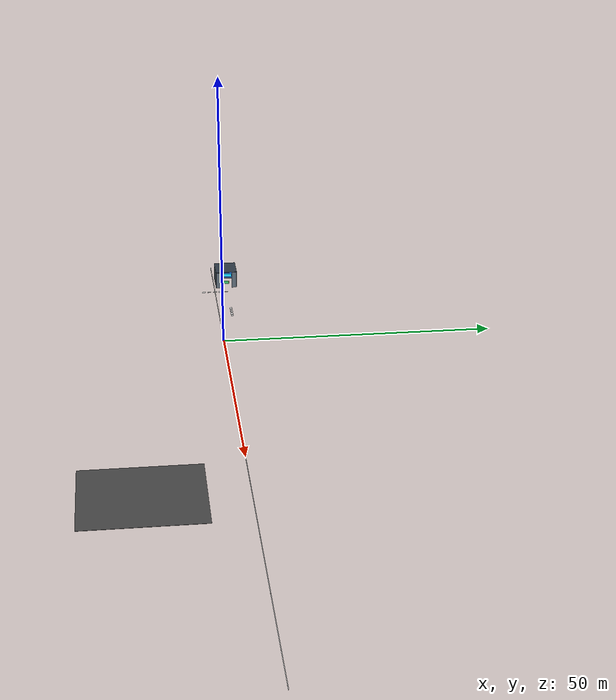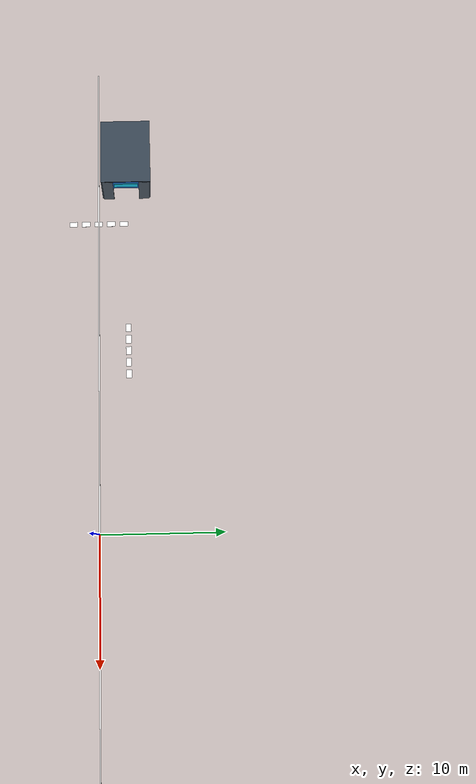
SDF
<sdf version="1.6">
 <world name="default">
  <plugin name="gazebo_ros_state" filename="libgazebo_ros_state.so">
   <ros><namespace>/gazebo</namespace></ros>
   <update_rate>1.0</update_rate>
  </plugin>
  <scene>
   <shadows>false</shadows>
   <grid>false</grid>
   <origin_visual>false</origin_visual>
   <ambient>0.85 0.85 0.85 1</ambient>
   <sky><clouds><speed>12</speed></clouds></sky>
   <background>0.35 0.35 0.35 1.0</background>
  </scene>
  <physics name="default_physics" default="0" type="ode">
   <max_step_size>0.005</max_step_size>
   <real_time_factor>1.0</real_time_factor>
   <real_time_update_rate>0</real_time_update_rate>
   <model_plugin_loading_timeout>120.0</model_plugin_loading_timeout>
   <ode>
    <solver><type>quick</type><iters>20</iters><sor>1.3</sor></solver>
    <constraints>
     <cfm>0.00001</cfm>
     <erp>0.2</erp>
     <contact_max_correcting_vel>100.0</contact_max_correcting_vel>
     <contact_surface_layer>0.001</contact_surface_layer>
    </constraints>
   </ode>
  </physics>
  <spherical_coordinates>
   <surface_model>EARTH_WGS84</surface_model>
   <latitude_deg>38.161479</latitude_deg>
   <longitude_deg>-122.454630</longitude_deg>
   <elevation>488.0</elevation>
   <heading_deg>180</heading_deg>
  </spherical_coordinates>
  <light type="directional" name="sun">
   <pose>0 0 1000 0 0 0</pose>
   <cast_shadows>false</cast_shadows>
   <diffuse>0.8 0.8 0.8 1</diffuse>
   <specular>0.5 0.5 0.5 1</specular>
   <attenuation>
    <range>1000</range>
    <constant>0.9</constant>
    <linear>0.01</linear>
    <quadratic>0.001</quadratic>
   </attenuation>
   <direction>-0.5 0.1 -0.4</direction>
  </light>
  <model name="ground_plane">
   <static>true</static>
   <link name="link">
    <collision name="collision">
     <geometry><plane><normal>0 0 1</normal><size>100 100</size></plane></geometry>
     <surface><friction><ode><mu>100</mu><mu2>50</mu2></ode></friction></surface>
    </collision>
   </link>
  </model>
  <model name="asphalt_plane_74">
   <static>true</static>
   <pose>61.581
    -16.664
    0
    0
    0
    0</pose>
   <link name="link">
    <visual name="visual">
     <geometry><box><size>20
            20
            0.05</size></box></geometry>
     <material>
      <script>
       <uri>model://asphalt_plane/materials/scripts</uri>
       <uri>model://asphalt_plane/materials/textures</uri>
       <name>vrc/asphalt</name>
      </script>
     </material>
    </visual>
   </link>
  </model>
  <model name="camera_delivery_lane_marking">
   <static>true</static>
   <link name="marking">
    <visual name="white_center_line">
     <pose>37.5 0 0.024 0 0 0</pose>
     <geometry><box><size>157.6 0.10 0.006</size></box></geometry>
     <material><ambient>0.95 0.95 0.95 1</ambient><diffuse>0.95 0.95 0.95 1</diffuse></material>
    </visual>
   </link>
  </model>
  <model name="depot_pedestrian_crosswalk">
   <static>true</static>
   <link name="stripes">
    <visual name="stripe_1">
     <pose>-26.5 -2.2 0.024 0 0 0</pose>
     <geometry><box><size>0.45 0.70 0.005</size></box></geometry>
     <material><ambient>0.95 0.95 0.95 1</ambient><diffuse>0.95 0.95 0.95 1</diffuse></material>
    </visual>
    <visual name="stripe_2">
     <pose>-26.5 -1.1 0.024 0 0 0</pose>
     <geometry><box><size>0.45 0.70 0.005</size></box></geometry>
     <material><ambient>0.95 0.95 0.95 1</ambient><diffuse>0.95 0.95 0.95 1</diffuse></material>
    </visual>
    <visual name="stripe_3">
     <pose>-26.5  0.0 0.024 0 0 0</pose>
     <geometry><box><size>0.45 0.70 0.005</size></box></geometry>
     <material><ambient>0.95 0.95 0.95 1</ambient><diffuse>0.95 0.95 0.95 1</diffuse></material>
    </visual>
    <visual name="stripe_4">
     <pose>-26.5  1.1 0.024 0 0 0</pose>
     <geometry><box><size>0.45 0.70 0.005</size></box></geometry>
     <material><ambient>0.95 0.95 0.95 1</ambient><diffuse>0.95 0.95 0.95 1</diffuse></material>
    </visual>
    <visual name="stripe_5">
     <pose>-26.5  2.2 0.024 0 0 0</pose>
     <geometry><box><size>0.45 0.70 0.005</size></box></geometry>
     <material><ambient>0.95 0.95 0.95 1</ambient><diffuse>0.95 0.95 0.95 1</diffuse></material>
    </visual>
   </link>
  </model>
  <model name="intersection_pedestrian_crosswalk">
   <static>true</static>
   <link name="stripes">
    <visual name="stripe_n1">
     <pose>-17.0 2.5 0.024 0 0 1.5708</pose>
     <geometry><box><size>0.45 0.70 0.005</size></box></geometry>
     <material><ambient>0.95 0.95 0.95 1</ambient><diffuse>0.95 0.95 0.95 1</diffuse></material>
    </visual>
    <visual name="stripe_n2">
     <pose>-16.0 2.5 0.024 0 0 1.5708</pose>
     <geometry><box><size>0.45 0.70 0.005</size></box></geometry>
     <material><ambient>0.95 0.95 0.95 1</ambient><diffuse>0.95 0.95 0.95 1</diffuse></material>
    </visual>
    <visual name="stripe_n3">
     <pose>-15.0 2.5 0.024 0 0 1.5708</pose>
     <geometry><box><size>0.45 0.70 0.005</size></box></geometry>
     <material><ambient>0.95 0.95 0.95 1</ambient><diffuse>0.95 0.95 0.95 1</diffuse></material>
    </visual>
    <visual name="stripe_n4">
     <pose>-14.0 2.5 0.024 0 0 1.5708</pose>
     <geometry><box><size>0.45 0.70 0.005</size></box></geometry>
     <material><ambient>0.95 0.95 0.95 1</ambient><diffuse>0.95 0.95 0.95 1</diffuse></material>
    </visual>
    <visual name="stripe_n5">
     <pose>-13.0 2.5 0.024 0 0 1.5708</pose>
     <geometry><box><size>0.45 0.70 0.005</size></box></geometry>
     <material><ambient>0.95 0.95 0.95 1</ambient><diffuse>0.95 0.95 0.95 1</diffuse></material>
    </visual>
   </link>
  </model>
  <model name="central_logistics_depot_building">
   <static>true</static>
   <pose>-31.75 2.50 0 0 0 0</pose>
   <link name="back_wall">
    <pose>-2.75 0 1.6 0 0 0</pose>
    <collision name="col"><geometry><box><size>0.20 4.0 3.2</size></box></geometry></collision>
    <visual name="vis">
     <geometry><box><size>0.20 4.0 3.2</size></box></geometry>
     <material><ambient>0.25 0.28 0.32 1</ambient><diffuse>0.35 0.40 0.45 1</diffuse></material>
    </visual>
   </link>
   <link name="north_wall">
    <pose>0 2.0 1.6 0 0 0</pose>
    <collision name="col"><geometry><box><size>5.5 0.20 3.2</size></box></geometry></collision>
    <visual name="vis">
     <geometry><box><size>5.5 0.20 3.2</size></box></geometry>
     <material><ambient>0.25 0.28 0.32 1</ambient><diffuse>0.35 0.40 0.45 1</diffuse></material>
    </visual>
   </link>
   <link name="south_wall">
    <pose>0 -2.0 1.6 0 0 0</pose>
    <collision name="col"><geometry><box><size>5.5 0.20 3.2</size></box></geometry></collision>
    <visual name="vis">
     <geometry><box><size>5.5 0.20 3.2</size></box></geometry>
     <material><ambient>0.25 0.28 0.32 1</ambient><diffuse>0.35 0.40 0.45 1</diffuse></material>
    </visual>
   </link>
   <link name="roof">
    <pose>0 0 3.2 0 0 0</pose>
    <collision name="col"><geometry><box><size>5.7 4.2 0.15</size></box></geometry></collision>
    <visual name="vis">
     <geometry><box><size>5.7 4.2 0.15</size></box></geometry>
     <material><ambient>0.15 0.18 0.22 1</ambient><diffuse>0.20 0.25 0.30 1</diffuse></material>
    </visual>
   </link>
   <link name="front_wall_left">
    <pose>2.75 1.55 1.6 0 0 0</pose>
    <collision name="col"><geometry><box><size>0.20 0.90 3.2</size></box></geometry></collision>
    <visual name="vis">
     <geometry><box><size>0.20 0.90 3.2</size></box></geometry>
     <material><ambient>0.25 0.28 0.32 1</ambient><diffuse>0.35 0.40 0.45 1</diffuse></material>
    </visual>
   </link>
   <link name="front_wall_right">
    <pose>2.75 -1.55 1.6 0 0 0</pose>
    <collision name="col"><geometry><box><size>0.20 0.90 3.2</size></box></geometry></collision>
    <visual name="vis">
     <geometry><box><size>0.20 0.90 3.2</size></box></geometry>
     <material><ambient>0.25 0.28 0.32 1</ambient><diffuse>0.35 0.40 0.45 1</diffuse></material>
    </visual>
   </link>
   <link name="front_door_transom">
    <pose>2.75 0 2.65 0 0 0</pose>
    <collision name="col"><geometry><box><size>0.20 2.20 1.10</size></box></geometry></collision>
    <visual name="vis">
     <geometry><box><size>0.20 2.20 1.10</size></box></geometry>
     <material><ambient>0.1 0.3 0.6 1</ambient><diffuse>0.15 0.45 0.85 1</diffuse></material>
    </visual>
    <visual name="depot_sign">
     <pose>0.12 0 0 0 0 1.5708</pose>
     <geometry><box><size>2.0 0.05 0.55</size></box></geometry>
     <material>
      <ambient>0.05 0.7 0.9 1</ambient>
      <diffuse>0.1 0.85 1.0 1</diffuse>
      <emissive>0.05 0.3 0.5 1</emissive>
     </material>
    </visual>
   </link>
   <link name="docking_pad">
    <pose>-0.25 0.05 0.015 0 0 0</pose>
    <collision name="col"><geometry><box><size>1.6 1.2 0.02</size></box></geometry></collision>
    <visual name="dock_surface">
     <geometry><box><size>1.6 1.2 0.02</size></box></geometry>
     <material>
      <ambient>0.15 0.55 0.35 1</ambient>
      <diffuse>0.2 0.7 0.4 1</diffuse>
      <emissive>0.05 0.2 0.1 1</emissive>
     </material>
    </visual>
    <visual name="dock_border_l">
     <pose>0 0.62 0.03 0 0 0</pose>
     <geometry><box><size>1.6 0.06 0.04</size></box></geometry>
     <material><ambient>0.9 0.8 0.1 1</ambient><diffuse>1.0 0.9 0.1 1</diffuse></material>
    </visual>
    <visual name="dock_border_r">
     <pose>0 -0.62 0.03 0 0 0</pose>
     <geometry><box><size>1.6 0.06 0.04</size></box></geometry>
     <material><ambient>0.9 0.8 0.1 1</ambient><diffuse>1.0 0.9 0.1 1</diffuse></material>
    </visual>
   </link>
  </model>
 </world>
</sdf>
